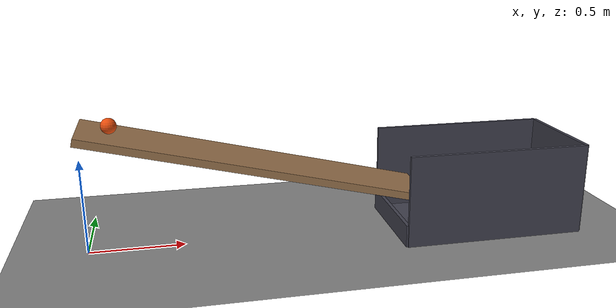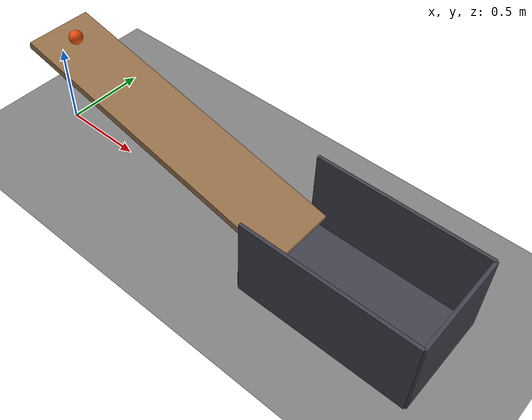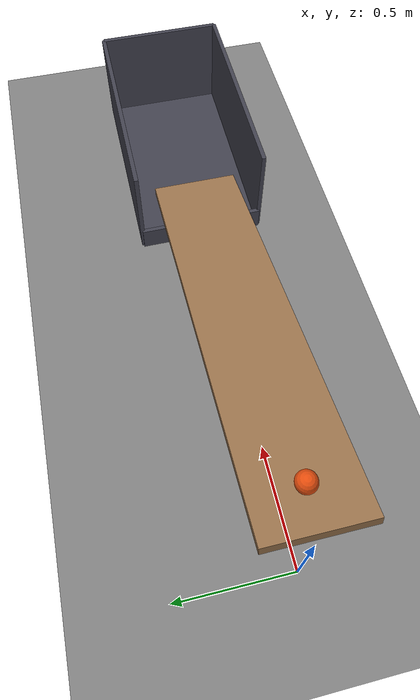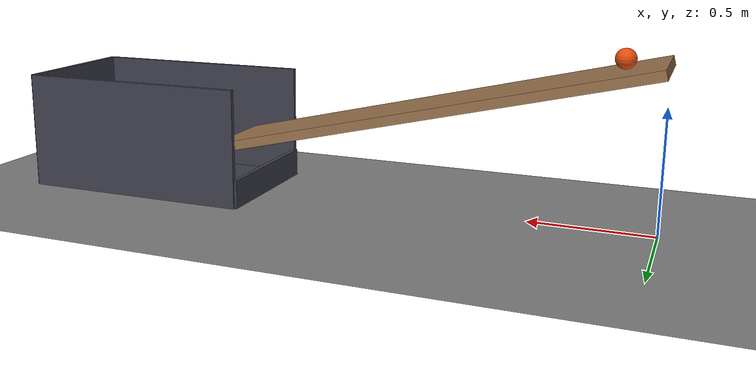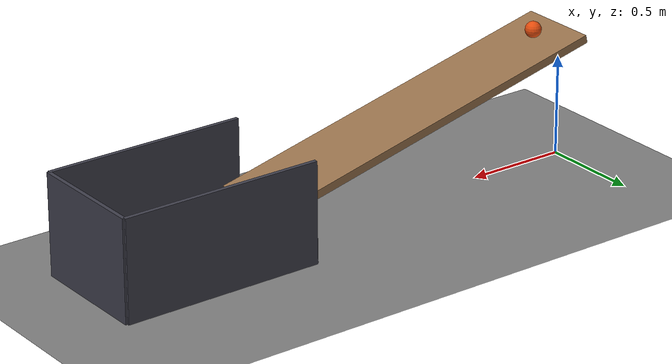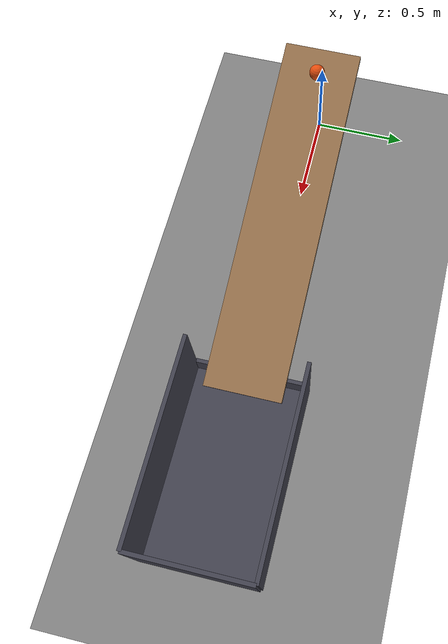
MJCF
<mujoco model="ball_rolls_into_a_cup">
  <compiler angle="radian"/>
  <option timestep="0.002"/>
  <worldbody>
    <geom name="floor" type="plane" size="6 6 0.1" friction="0.8 0.005 0.002"/>
    <body name="ramp">
      <geom name="ramp" type="box" pos="0.9 0 0.435" size="0.925324 0.2 0.02" euler="0 0.234494 0" friction="0.8 0.005 0.0005" solref="0.01 1" rgba="0.6 0.45 0.3 1"/>
    </body>
    <body name="cup">
      <geom name="cup_base" type="box" pos="2.15 0 0.01" size="0.5 0.3 0.01" friction="1 0.02 0.02" solref="0.01 1" rgba="0.25 0.25 0.3 1"/>
      <geom name="cup_near_wall" type="box" pos="1.65 0 0.06" size="0.01 0.3 0.06" friction="1 0.02 0.02" solref="0.01 1" rgba="0.25 0.25 0.3 1"/>
      <geom name="cup_far_wall" type="box" pos="2.65 0 0.25" size="0.01 0.3 0.25" friction="1 0.02 0.02" solref="0.01 1" rgba="0.25 0.25 0.3 1"/>
      <geom name="cup_left_wall" type="box" pos="2.15 0.3 0.25" size="0.5 0.01 0.25" friction="1 0.02 0.02" solref="0.01 1" rgba="0.25 0.25 0.3 1"/>
      <geom name="cup_right_wall" type="box" pos="2.15 -0.3 0.25" size="0.5 0.01 0.25" friction="1 0.02 0.02" solref="0.01 1" rgba="0.25 0.25 0.3 1"/>
    </body>
    <body name="ball" pos="0.159836 0 0.673505">
      <freejoint/>
      <geom name="ball" type="sphere" pos="0 0 0" size="0.04" mass="0.2" condim="6" friction="0.8 0.005 0.0005" solref="0.01 1" rgba="0.9 0.3 0.05 1"/>
    </body>
  </worldbody>
  <keyframe>
    <key name="start" qpos="0.159836 0 0.673505 1 0 0 0" qvel="0 0 0 0 0 0"/>
  </keyframe>
</mujoco>
